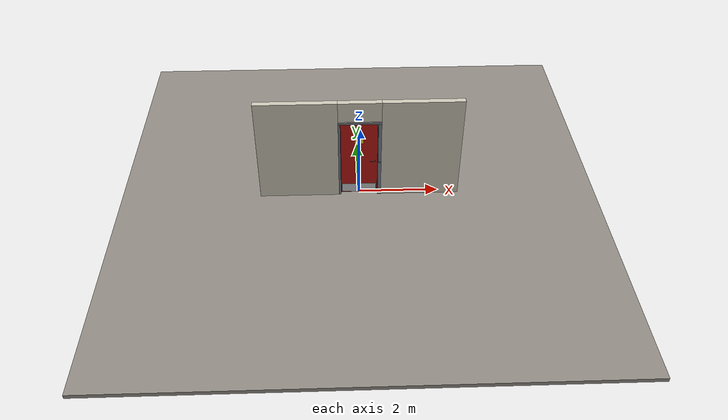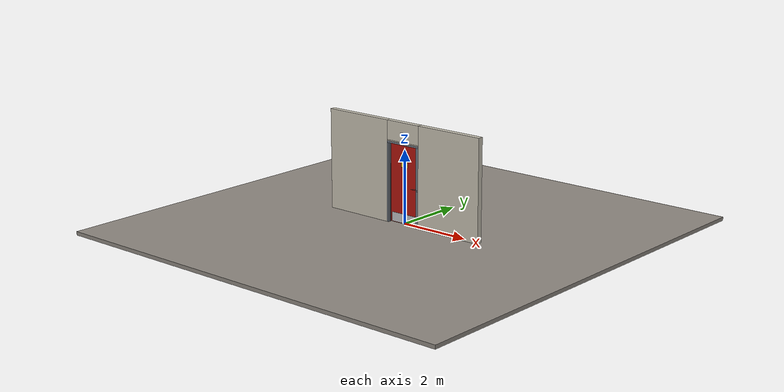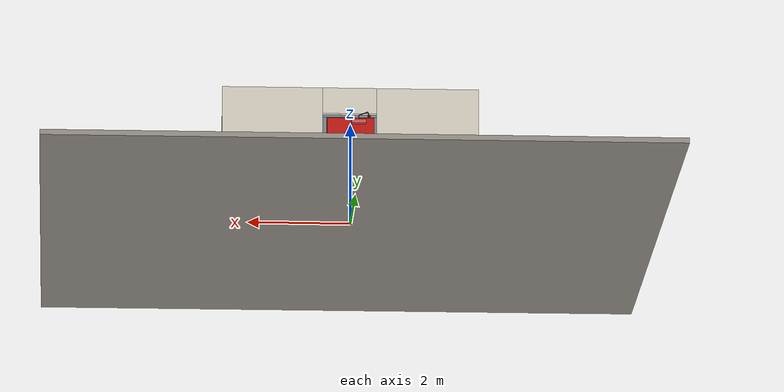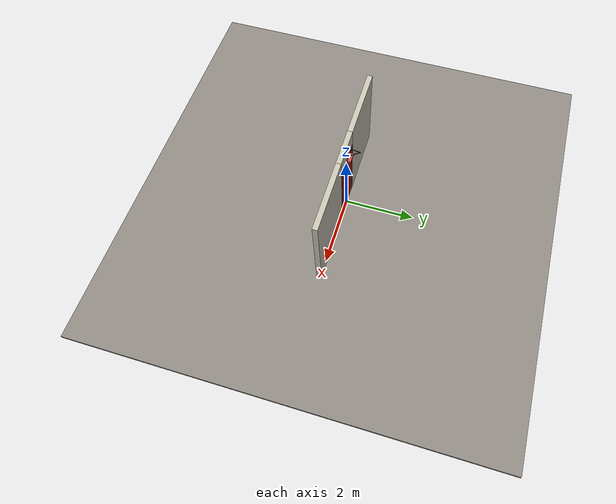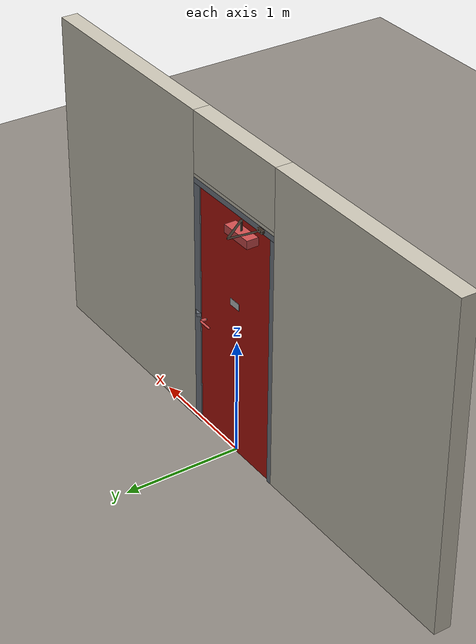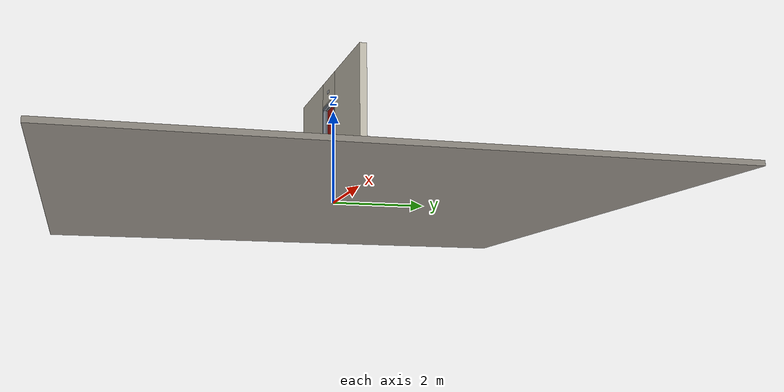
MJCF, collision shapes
<?xml version="1.0" ?>
<mujoco model="db0378_swing_single_full">
  <compiler angle="radian" meshdir="../../hardware" texturedir="../../textures" autolimits="true" inertiafromgeom="false"/>
  <option timestep="0.002" integrator="implicitfast" cone="elliptic" impratio="10" noslip_iterations="3">
    <flag multiccd="enable"/>
  </option>
  <size memory="16M"/>
  <default>
    <geom condim="4" solref="0.005 1" solimp="0.95 0.99 0.001"/>
    <joint solreflimit="0.005 1" solimplimit="0.95 0.99 0.001"/>
    <tendon solreflimit="0.005 1"/>
    <equality solref="0.002 1"/>
  </default>
  <visual>
    <headlight ambient="0.4 0.4 0.4" diffuse="0.7 0.7 0.7" specular="0.2 0.2 0.2"/>
    <quality shadowsize="4096"/>
    <map znear="0.01" zfar="60"/>
  </visual>
  <asset>
    <mesh name="closer_body_fdc4667657" file="closer_body_fdc4667657.obj"/>
    <mesh name="exit_sign_a6449bfa2c" file="exit_sign_a6449bfa2c.obj"/>
    <mesh name="hinge_ed08f20e7f" file="hinge_ed08f20e7f.obj"/>
    <mesh name="hinge_jamb_1278ce3e25" file="hinge_jamb_1278ce3e25.obj"/>
    <mesh name="lever_9f02b544cf" file="lever_9f02b544cf.obj"/>
    <material name="mat_floor" rgba="0.55 0.53 0.5 1" specular="0.2" shininess="0.15" reflectance="0"/>
    <material name="mat_wall" rgba="0.78 0.76 0.7 1" specular="0.2" shininess="0.1" reflectance="0"/>
    <material name="mat_leaf" rgba="0.7 0.08 0.05 1" specular="0.23" shininess="0.35" reflectance="0.02"/>
    <material name="mat_hinge" rgba="0.65 0.66 0.68 1" specular="0.74" shininess="0.5" reflectance="0.36"/>
    <material name="mat_op_nickel_satin" rgba="0.72 0.7 0.66 1" specular="0.8" shininess="0.65" reflectance="0.4"/>
    <material name="mat_trim" rgba="0.85 0.66 0.3 1" specular="0.8" shininess="0.75" reflectance="0.4"/>
    <material name="mat_bolt" rgba="0.85 0.66 0.3 1" specular="0.8" shininess="0.75" reflectance="0.4"/>
    <material name="mat_frame" rgba="0.45 0.48 0.52 1" specular="0.32" shininess="0.6" reflectance="0.08"/>
    <material name="mat_seal" rgba="0.1 0.1 0.1 1" specular="0.2" shininess="0.1" reflectance="0"/>
    <material name="mat_closer" rgba="0.22 0.17 0.13 1" specular="0.8" shininess="0.6" reflectance="0.4"/>
    <material name="mat_kick" rgba="0.75 0.76 0.77 1" specular="0.8" shininess="0.65" reflectance="0.4"/>
    <material name="mat_exit_sign" rgba="0.85 0.1 0.1 1" specular="0.2" shininess="0.6" reflectance="0"/>
    <material name="mat_sign_bracket" rgba="0.8 0.81 0.83 1" specular="0.8" shininess="0.6" reflectance="0.4"/>
    <material name="mat_sign" rgba="0.75 0.76 0.77 1" specular="0.8" shininess="0.65" reflectance="0.4"/>
    <material name="mat_placard" rgba="0.95 0.75 0.05 1" specular="0.2" shininess="0.5" reflectance="0"/>
    <texture name="skybox" type="skybox" builtin="gradient" rgb1="0.6 0.7 0.85" rgb2="0.9 0.92 0.95" width="256" height="256"/>
  </asset>
  <worldbody>
    <light name="sun" pos="1.5 -2.5 4" dir="-0.3 0.5 -0.8" directional="true" diffuse="0.8 0.8 0.8" specular="0.3 0.3 0.3" castshadow="true"/>
    <light name="fill" pos="-1.5 2.5 3" dir="0.3 -0.5 -0.7" directional="true" diffuse="0.35 0.35 0.4" castshadow="false"/>
    <camera name="robot_view" pos="0 -2.681312 1.812087" xyaxes="1 0 0 0 0.26963 0.962964" fovy="52"/>
    <camera name="far_view" pos="0 2.594313 1.812087" xyaxes="-1 0 0 0 -0.26963 0.962964" fovy="52"/>
    <camera name="iso" pos="2.004737 -2.259262 2.234138" xyaxes="0.741536 0.670913 0 -0.242917 0.268487 0.932151" fovy="46"/>
    <camera name="detail_handle" pos="0.4665 -0.877 1.296" xyaxes="0.97561 0.219512 0 -0.070934 0.315262 0.94635" fovy="38"/>
    <geom name="floor" type="box" size="6 6 0.05" pos="0 0 -0.05" material="mat_floor" group="0" contype="1" conaffinity="1" friction="0.8 0.005 0.0001" density="2400"/>
    <geom name="wall_left" type="box" size="0.99475 0.0725 1.3735" pos="-1.50525 -0.0435 1.3735" material="mat_wall" group="0" contype="1" conaffinity="1" friction="0.6 0.005 0.0001" density="800"/>
    <geom name="wall_right" type="box" size="0.97975 0.0725 1.3735" pos="1.52025 -0.0435 1.3735" material="mat_wall" group="0" contype="1" conaffinity="1" friction="0.6 0.005 0.0001" density="800"/>
    <geom name="wall_header" type="box" size="0.5255 0.0725 0.26" pos="0.015 -0.0435 2.487" material="mat_wall" group="0" contype="1" conaffinity="1" friction="0.6 0.005 0.0001" density="800"/>
    <geom name="hinge_0_jamb" type="mesh" mesh="hinge_jamb_1278ce3e25" pos="-0.4575 0.029 0.259" quat="0 1 0 0" material="mat_hinge" group="1" contype="0" conaffinity="0" density="7850"/>
    <geom name="hinge_1_jamb" type="mesh" mesh="hinge_jamb_1278ce3e25" pos="-0.4575 0.029 0.827" quat="0 1 0 0" material="mat_hinge" group="1" contype="0" conaffinity="0" density="7850"/>
    <geom name="hinge_2_jamb" type="mesh" mesh="hinge_jamb_1278ce3e25" pos="-0.4575 0.029 1.395" quat="0 1 0 0" material="mat_hinge" group="1" contype="0" conaffinity="0" density="7850"/>
    <geom name="hinge_3_jamb" type="mesh" mesh="hinge_jamb_1278ce3e25" pos="-0.4575 0.029 1.963" quat="0 1 0 0" material="mat_hinge" group="1" contype="0" conaffinity="0" density="7850"/>
    <geom name="jamb_hinge" type="box" size="0.025 0.0725 1.0735" pos="-0.4855 -0.0435 1.0735" material="mat_frame" group="0" contype="1" conaffinity="1" friction="0.6 0.005 0.0001" density="300"/>
    <geom name="strike_1016_wall_n" type="box" size="0.04 0.05325 0.0183" pos="0.5005 -0.06275 1.016" material="mat_frame" group="0" contype="1" conaffinity="1" friction="0.6 0.005 0.0001" density="300"/>
    <geom name="strike_1016_wall_p" type="box" size="0.04 0.008 0.0183" pos="0.5005 0.0175 1.016" material="mat_frame" group="0" contype="1" conaffinity="1" friction="0.6 0.005 0.0001" density="300"/>
    <geom name="strike_1016_ramp" type="box" size="0.04 0.018028 0.0183" pos="0.503782 0.018312 1.016" quat="0.957092 0 0 -0.289784" material="mat_frame" group="0" contype="1" conaffinity="1" friction="0.12 0.005 0.0001" density="300"/>
    <geom name="strike_1016_back" type="box" size="0.0285 0.0095 0.0183" pos="0.512 0 1.016" material="mat_frame" group="0" contype="1" conaffinity="1" friction="0.6 0.005 0.0001" density="300"/>
    <geom name="jamb_strike_0" type="box" size="0.04 0.0725 0.49885" pos="0.5005 -0.0435 0.49885" material="mat_frame" group="0" contype="1" conaffinity="1" friction="0.6 0.005 0.0001" density="300"/>
    <geom name="jamb_strike_1" type="box" size="0.04 0.0725 0.55635" pos="0.5005 -0.0435 1.59065" material="mat_frame" group="0" contype="1" conaffinity="1" friction="0.6 0.005 0.0001" density="300"/>
    <geom name="jamb_head" type="box" size="0.5255 0.0725 0.025" pos="0.015 -0.0435 2.172" material="mat_frame" group="0" contype="1" conaffinity="1" friction="0.6 0.005 0.0001" density="300"/>
    <geom name="head_stud" type="box" size="0.5255 0.0725 0.015" pos="0.015 -0.0435 2.212" material="mat_wall" group="0" contype="1" conaffinity="1" friction="0.6 0.005 0.0001" density="500"/>
    <geom name="stop_hinge" type="box" size="0.0055 0.016 1.0735" pos="-0.455 -0.0385 1.0735" material="mat_frame" group="0" contype="1" conaffinity="1" friction="0.6 0.005 0.0001" density="300"/>
    <geom name="stop_strike" type="box" size="0.0055 0.016 1.0735" pos="0.455 -0.0385 1.0735" material="mat_frame" group="0" contype="1" conaffinity="1" friction="0.6 0.005 0.0001" density="300"/>
    <geom name="stop_head" type="box" size="0.4605 0.016 0.0055" pos="0 -0.0385 2.1415" material="mat_frame" group="0" contype="1" conaffinity="1" friction="0.6 0.005 0.0001" density="300"/>
    <geom name="seal_hinge" type="box" size="0.004 0.0025 1.0735" pos="-0.4575 -0.0245 1.0735" material="mat_seal" group="1" contype="0" conaffinity="0" density="1100"/>
    <geom name="seal_strike" type="box" size="0.004 0.0025 1.0735" pos="0.4575 -0.0245 1.0735" material="mat_seal" group="1" contype="0" conaffinity="0" density="1100"/>
    <geom name="seal_head" type="box" size="0.4405 0.0025 0.008" pos="0 -0.0245 2.135" material="mat_seal" group="1" contype="0" conaffinity="0" density="1100"/>
    <geom name="closer_bracket" type="box" size="0.03 0.012 0.014" pos="-0.3605 0.041 2.177" material="mat_closer" group="1" contype="0" conaffinity="0" density="2700"/>
    <geom name="exit_sign" type="mesh" mesh="exit_sign_a6449bfa2c" pos="0 -0.15 2.447" material="mat_exit_sign" group="2" contype="0" conaffinity="0" density="500"/>
    <geom name="exit_sign_bracket" type="box" size="0.05775 0.005 0.035" pos="0 -0.1205 2.447" material="mat_sign_bracket" group="2" contype="0" conaffinity="0" density="7850"/>
    <site name="approach_point" pos="0 -1.5 0" quat="1 0 0 0" size="0.05" rgba="0.2 0.9 0.2 0.5" group="4"/>
    <site name="goal_point" pos="0 1.5 0" quat="1 0 0 0" size="0.05" rgba="0.2 0.9 0.2 0.5" group="4"/>
    <site name="door_plane_center" pos="0 0 1.0735" quat="1 0 0 0" size="0.02" rgba="0.2 0.9 0.2 0.5" group="4"/>
    <body name="leaf" pos="-0.4605 0 0">
      <inertial pos="0.415786 0.015423 1.257645" mass="54.277815" quat="-0.471962 0.496131 0.516856 0.513776" diaginertia="3.292317976 26.989504915 30.190739674"/>
      <joint name="leaf_hinge" type="hinge" axis="0 0 1" pos="0.003 0.029 0" limited="true" range="0 1.570796" solreflimit="0.02 1" damping="12.268966" frictionloss="2.037189" stiffness="10.879832" springref="-2.101135" armature="0.02"/>
      <geom name="leaf_slab" type="box" size="0.457 0.022 1.067" pos="0.46 0 1.076" material="mat_leaf" group="0" contype="1" conaffinity="1" friction="0.4 0.005 0.0001" density="1"/>
      <geom name="hinge_0" type="mesh" mesh="hinge_ed08f20e7f" pos="0.003 0.029 0.259" quat="0 1 0 0" material="mat_hinge" group="1" contype="0" conaffinity="0" density="7850"/>
      <geom name="hinge_1" type="mesh" mesh="hinge_ed08f20e7f" pos="0.003 0.029 0.827" quat="0 1 0 0" material="mat_hinge" group="1" contype="0" conaffinity="0" density="7850"/>
      <geom name="hinge_2" type="mesh" mesh="hinge_ed08f20e7f" pos="0.003 0.029 1.395" quat="0 1 0 0" material="mat_hinge" group="1" contype="0" conaffinity="0" density="7850"/>
      <geom name="hinge_3" type="mesh" mesh="hinge_ed08f20e7f" pos="0.003 0.029 1.963" quat="0 1 0 0" material="mat_hinge" group="1" contype="0" conaffinity="0" density="7850"/>
      <geom name="leaf_latch_bolt_faceplate" type="box" size="0.0006 0.014 0.0283" pos="0.9164 0 1.016" material="mat_bolt" group="1" contype="0" conaffinity="0" density="8500"/>
      <geom name="closer_body" type="mesh" mesh="closer_body_fdc4667657" pos="0.3 0.022 2.054" quat="-0.707107 0.707107 0 0" material="mat_closer" group="1" contype="0" conaffinity="0" density="2000"/>
      <geom name="closer_body_col" type="box" size="0.145 0.05 0.035" pos="0.3 0.072 2.054" material="mat_closer" group="3" contype="1" conaffinity="1" rgba="0.8 0.3 0.3 0.25" friction="0.6 0.005 0.0001" density="2000"/>
      <geom name="closer_pinion_shaft" type="cylinder" size="0.008 0.0615" pos="0.3 0.072 2.1155" material="mat_closer" group="1" contype="0" conaffinity="0" density="2700"/>
      <geom name="kick_plate_n" type="box" size="0.427 0.0008 0.125" pos="0.46 -0.0228 0.144" material="mat_kick" group="2" contype="0" conaffinity="0" density="7900"/>
      <geom name="sign_push" type="box" size="0.06 0.001 0.03" pos="0.46 -0.023 1.359" material="mat_sign" group="2" contype="0" conaffinity="0" density="7900"/>
      <geom name="sign_pull" type="box" size="0.06 0.001 0.03" pos="0.46 0.023 1.359" material="mat_sign" group="2" contype="0" conaffinity="0" density="7900"/>
      <geom name="warning_placard" type="box" size="0.11 0.001 0.08" pos="0.46 -0.023 1.6095" material="mat_placard" group="2" contype="0" conaffinity="0" density="1000"/>
      <site name="leaf_edge_mid" pos="0.917 0 1.067" quat="1 0 0 0" size="0.02" rgba="0.2 0.9 0.2 0.5" group="4"/>
      <body name="leaf_handle" pos="0.847 0 1.016">
        <inertial pos="-0.028544 0 0" mass="0.978187" quat="0 0.707107 0.707107 0" diaginertia="0.001772047 0.003604455 0.005198299"/>
        <joint name="leaf_handle_hinge" type="hinge" axis="0 -1 0" limited="true" range="0 0.96" damping="0.245624" frictionloss="0.048" stiffness="1.2" springref="-0.458333" armature="0.01"/>
        <geom name="leaf_handle_spindle" type="cylinder" size="0.006 0.03" pos="0 0 0" quat="0.707107 -0.707107 0 0" material="mat_op_nickel_satin" group="1" contype="0" conaffinity="0" density="7850"/>
        <geom name="leaf_handle_lever_n" type="mesh" mesh="lever_9f02b544cf" pos="0 -0.022 0" quat="0.707107 0.707107 0 0" material="mat_op_nickel_satin" group="1" contype="0" conaffinity="0" density="3000"/>
        <geom name="leaf_handle_lever_col_n" type="capsule" size="0.0095 0.053" pos="-0.0625 -0.077 0" quat="0.707107 0 -0.707107 0" material="mat_op_nickel_satin" group="3" contype="1" conaffinity="1" rgba="0.8 0.3 0.3 0.25" friction="0.7 0.01 0.0001" density="3000"/>
        <geom name="leaf_handle_hub_col_n" type="cylinder" size="0.012 0.022" pos="0 -0.052 0" quat="0.707107 -0.707107 0 0" material="mat_op_nickel_satin" group="3" contype="1" conaffinity="1" rgba="0.8 0.3 0.3 0.25" friction="0.6 0.005 0.0001" density="3000"/>
        <geom name="leaf_handle_lever_p" type="mesh" mesh="lever_9f02b544cf" pos="0 0.022 0" quat="-0.707107 0.707107 0 0" material="mat_op_nickel_satin" group="1" contype="0" conaffinity="0" density="3000"/>
        <geom name="leaf_handle_lever_col_p" type="capsule" size="0.0095 0.053" pos="-0.0625 0.077 0" quat="0.707107 0 -0.707107 0" material="mat_op_nickel_satin" group="3" contype="1" conaffinity="1" rgba="0.8 0.3 0.3 0.25" friction="0.7 0.01 0.0001" density="3000"/>
        <geom name="leaf_handle_hub_col_p" type="cylinder" size="0.012 0.022" pos="0 0.052 0" quat="0.707107 -0.707107 0 0" material="mat_op_nickel_satin" group="3" contype="1" conaffinity="1" rgba="0.8 0.3 0.3 0.25" friction="0.6 0.005 0.0001" density="3000"/>
        <site name="leaf_handle_grip_n" pos="-0.1 -0.077 0" quat="1 0 0 0" size="0.012" rgba="0.2 0.9 0.2 0.5" group="4"/>
        <site name="leaf_handle_grip_p" pos="-0.1 0.077 0" quat="1 0 0 0" size="0.012" rgba="0.2 0.9 0.2 0.5" group="4"/>
      </body>
      <body name="leaf_latch_bolt" pos="0.917 0 1.016">
        <inertial pos="-0.0055 0 0" mass="0.074627" quat="0.92388 -0.382683 0 0" diaginertia="0.000002271 0.000013255 0.000013255"/>
        <joint name="leaf_latch_bolt_slide" type="slide" axis="-1 0 0" limited="true" range="0 0.019" damping="2" frictionloss="0.3" stiffness="600" springref="-0.01" armature="0.1"/>
        <geom name="leaf_latch_bolt_capsule" type="capsule" size="0.008 0.0165" pos="-0.0055 0 0" quat="0.707107 0 0.707107 0" material="mat_bolt" group="0" contype="1" conaffinity="1" friction="0.2 0.005 0.0001" density="8500"/>
      </body>
      <body name="closer_arm_main" pos="0.3 0.072 2.177" quat="0.454107 0 0 0.890947">
        <inertial pos="0.14 0 0" mass="0.12096" quat="1 0 0 0" diaginertia="0.000003588 0.00079128 0.000792852"/>
        <joint name="closer_pinion" type="hinge" axis="0 0 1" limited="false" damping="0.01" armature="0.002"/>
        <geom name="closer_arm_main_geom" type="box" size="0.14 0.008 0.005" pos="0.14 0 0" material="mat_closer" group="1" contype="0" conaffinity="0" density="2700"/>
        <body name="closer_arm_fore" pos="0.28 0 0" quat="-0.373215 0 0 -0.927745">
          <inertial pos="0.128088 0 0" mass="0.076531" quat="1 0 0 0" diaginertia="0.000001771 0.000437665 0.000438201"/>
          <joint name="closer_elbow" type="hinge" axis="0 0 1" limited="false" damping="0.01" armature="0.002"/>
          <geom name="closer_arm_fore_geom" type="box" size="0.1125 0.007 0.004" pos="0.1125 0 0" material="mat_closer" group="1" contype="0" conaffinity="0" density="2700"/>
          <geom name="closer_fore_neck" type="box" size="0.0175 0.003 0.003" pos="0.2425 0 0" material="mat_closer" group="1" contype="0" conaffinity="0" density="2700"/>
          <geom name="closer_fore_pivot" type="cylinder" size="0.005 0.012" pos="0.26 0 0" material="mat_closer" group="1" contype="0" conaffinity="0" density="2700"/>
        </body>
      </body>
    </body>
  </worldbody>
  <tendon>
    <fixed name="leaf_latch_bolt_coupling" limited="true" range="0 10">
      <joint joint="leaf_latch_bolt_slide" coef="1"/>
      <joint joint="leaf_handle_hinge" coef="-0.020879"/>
    </fixed>
  </tendon>
  <equality>
    <connect name="closer_arm_connect" body1="closer_arm_fore" body2="world" anchor="0.26 0 0" active="true"/>
  </equality>
  <contact>
    <exclude body1="closer_arm_main" body2="leaf"/>
    <exclude body1="closer_arm_fore" body2="leaf"/>
    <exclude body1="closer_arm_main" body2="closer_arm_fore"/>
  </contact>
  <sensor>
    <jointpos name="leaf_hinge_pos" joint="leaf_hinge"/>
    <jointvel name="leaf_hinge_vel" joint="leaf_hinge"/>
    <jointpos name="leaf_handle_hinge_pos" joint="leaf_handle_hinge"/>
    <jointvel name="leaf_handle_hinge_vel" joint="leaf_handle_hinge"/>
    <jointpos name="leaf_latch_bolt_slide_pos" joint="leaf_latch_bolt_slide"/>
    <jointvel name="leaf_latch_bolt_slide_vel" joint="leaf_latch_bolt_slide"/>
  </sensor>
</mujoco>
